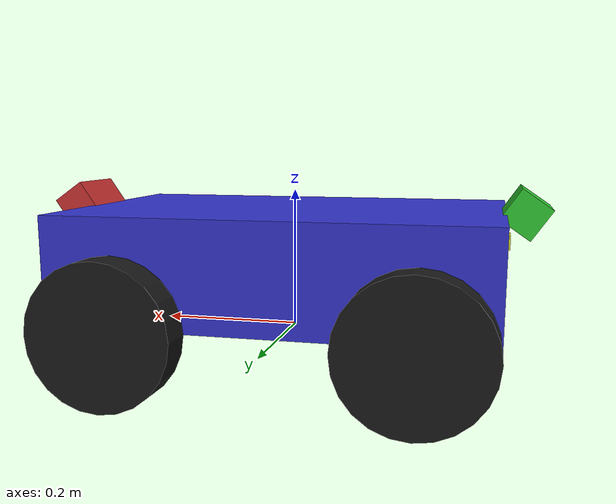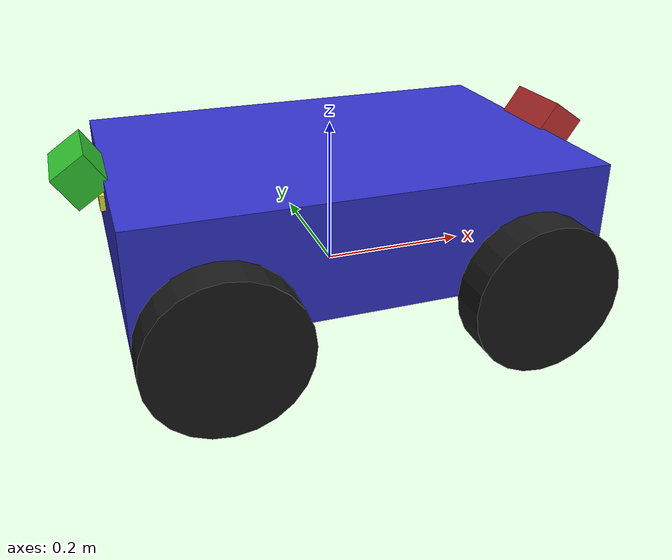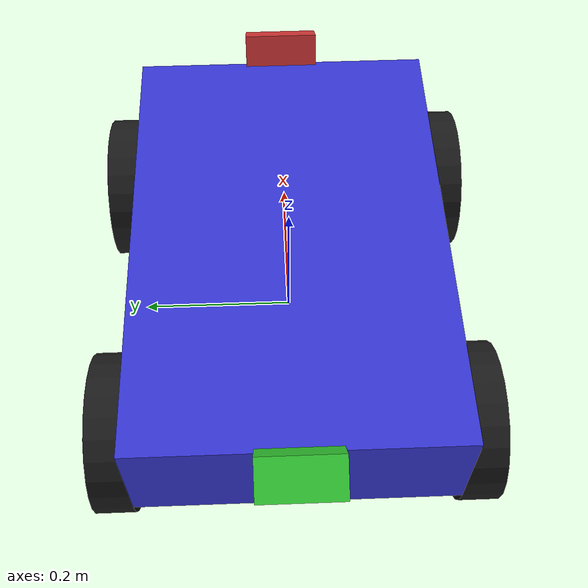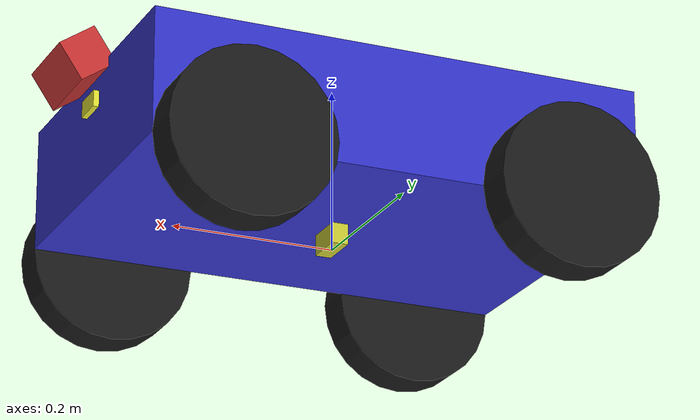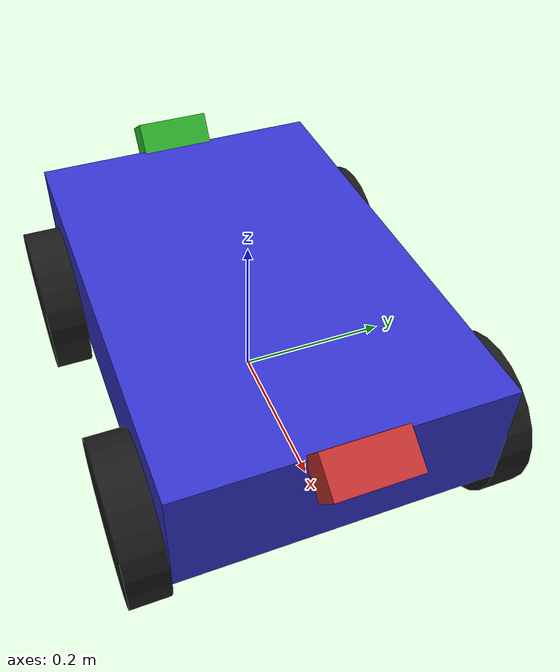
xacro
<?xml version="1.0"?>
<robot xmlns:xacro="http://www.ros.org/wiki/xacro" name="line_follower_robot">

  <!-- Import the original robot xacro -->
  <xacro:include filename="$(find blue_line_follower)/urdf/line_follower_robot.urdf.xacro" />

  <!-- Override the gazebo_ros2_control plugin with namespace -->
  <gazebo>
    <plugin filename="libgazebo_ros2_control.so" name="gazebo_ros2_control">
      <robot_param>blue_robot_description</robot_param>
      <robot_param_node>blue_robot_state_publisher</robot_param_node>
      <parameters>$(find blue_line_follower)/config/controller_config.yaml</parameters>
      <ros>
        <namespace>/line_follower</namespace>
      </ros>
    </plugin>
  </gazebo>

</robot>

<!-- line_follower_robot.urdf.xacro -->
<robot xmlns:xacro="http://www.ros.org/wiki/xacro" name="line_follower_robot">

  <!-- Define constants -->
  <xacro:property name="base_width" value="0.4"/>
  <xacro:property name="base_length" value="0.6"/>
  <xacro:property name="base_height" value="0.15"/>
  <xacro:property name="wheel_radius" value="0.1"/>
  <xacro:property name="wheel_width" value="0.05"/>
  <xacro:property name="wheel_separation" value="0.45"/>
  <xacro:property name="wheel_base" value="0.4"/>

  <!-- Base Link -->
  <link name="base_link">
    <visual>
      <geometry>
        <box size="${base_length} ${base_width} ${base_height}"/>
      </geometry>
      <material name="blue">
        <color rgba="0.2 0.2 0.8 1"/>
      </material>
    </visual>
    <collision>
      <geometry>
        <box size="${base_length} ${base_width} ${base_height}"/>
      </geometry>
    </collision>
    <inertial>
      <mass value="5.0"/>
      <inertia ixx="0.1" ixy="0.0" ixz="0.0" iyy="0.1" iyz="0.0" izz="0.1"/>
    </inertial>
  </link>

  <!-- Footprint Link -->
  <link name="base_footprint"/>

  <joint name="base_footprint_joint" type="fixed">
    <parent link="base_footprint"/>
    <child link="base_link"/>
    <origin xyz="0 0 ${wheel_radius}" rpy="0 0 0"/>
  </joint>

  <!-- Wheel Macro -->
  <xacro:macro name="wheel" params="prefix x_pos y_pos">
    <link name="${prefix}_wheel">
      <visual>
        <geometry>
          <cylinder radius="${wheel_radius}" length="${wheel_width}"/>
        </geometry>
        <material name="black">
          <color rgba="0.1 0.1 0.1 1"/>
        </material>
        <origin xyz="0 0 0" rpy="${pi/2} 0 0"/>
      </visual>
      <collision>
        <geometry>
          <cylinder radius="${wheel_radius}" length="${wheel_width}"/>
        </geometry>
        <origin xyz="0 0 0" rpy="${pi/2} 0 0"/>
      </collision>
      <inertial>
        <mass value="0.5"/>
        <inertia ixx="0.01" ixy="0.0" ixz="0.0" iyy="0.01" iyz="0.0" izz="0.01"/>
      </inertial>
    </link>

    <joint name="${prefix}_wheel_joint" type="continuous">
      <parent link="base_link"/>
      <child link="${prefix}_wheel"/>
      <origin xyz="${x_pos} ${y_pos} ${-base_height/2}" rpy="0 0 0"/>
      <axis xyz="0 1 0"/>
    </joint>

    <!-- Gazebo reference for wheel -->
    <gazebo reference="${prefix}_wheel">
      <material>Gazebo/Black</material>
      <mu1>1.0</mu1>
      <mu2>1.0</mu2>
      <kp>1000000.0</kp>
      <kd>100.0</kd>
    </gazebo>
  </xacro:macro>

  <!-- Create 4 wheels -->
  <xacro:wheel prefix="front_left" x_pos="${wheel_base/2}" y_pos="${wheel_separation/2}"/>
  <xacro:wheel prefix="front_right" x_pos="${wheel_base/2}" y_pos="${-wheel_separation/2}"/>
  <xacro:wheel prefix="rear_left" x_pos="${-wheel_base/2}" y_pos="${wheel_separation/2}"/>
  <xacro:wheel prefix="rear_right" x_pos="${-wheel_base/2}" y_pos="${-wheel_separation/2}"/>

  <!-- Camera Link -->
  <link name="camera_link">
    <visual>
      <geometry>
        <box size="0.05 0.1 0.05"/>
      </geometry>
      <material name="red">
        <color rgba="0.8 0.2 0.2 1"/>
      </material>
    </visual>
    <collision>
      <geometry>
        <box size="0.05 0.1 0.05"/>
      </geometry>
    </collision>
    <inertial>
      <mass value="0.1"/>
      <inertia ixx="0.001" ixy="0.0" ixz="0.0" iyy="0.001" iyz="0.0" izz="0.001"/>
    </inertial>
  </link>

  <joint name="camera_joint" type="fixed">
    <parent link="base_link"/>
    <child link="camera_link"/>
    <origin xyz="${base_length/2 + 0.025} 0 ${base_height/2 + 0}" rpy="0 0.6 0"/>
  </joint>

  <!-- Camera Sensor -->
  <gazebo reference="camera_link">
    <sensor type="camera" name="camera">
      <update_rate>30.0</update_rate>
      <camera name="head">
        <horizontal_fov>1.3962634</horizontal_fov>
        <image>
          <width>640</width>
          <height>480</height>
          <format>R8G8B8</format>
        </image>
        <clip>
          <near>0.02</near>
          <far>300</far>
        </clip>
        <noise>
          <type>gaussian</type>
          <mean>0.0</mean>
          <stddev>0.007</stddev>
        </noise>
      </camera>
      <plugin name="camera_controller" filename="libgazebo_ros_camera.so">
        <frame_name>camera_link</frame_name>
        <ros>
          <namespace>/</namespace>
          <remapping>~/image_raw:=camera/image_raw</remapping>
          <remapping>~/camera_info:=camera/camera_info</remapping>
        </ros>
      </plugin>
    </sensor>
  </gazebo>

  <!-- Rear Camera Link -->
  <link name="rear_camera_link">
    <visual>
      <geometry>
        <box size="0.05 0.1 0.05"/>
      </geometry>
      <material name="green">
        <color rgba="0.2 0.8 0.2 1"/>
      </material>
    </visual>
    <collision>
      <geometry>
        <box size="0.05 0.1 0.05"/>
      </geometry>
    </collision>
    <inertial>
      <mass value="0.1"/>
      <inertia ixx="0.001" ixy="0.0" ixz="0.0" iyy="0.001" iyz="0.0" izz="0.001"/>
    </inertial>
  </link>

  <joint name="rear_camera_joint" type="fixed">
    <parent link="base_link"/>
    <child link="rear_camera_link"/>
    <origin xyz="${-base_length/2 - 0.025} 0 ${base_height/2 + 0}" rpy="0 0.6 3.14159"/>
  </joint>

  <!-- Rear Camera Sensor -->
  <gazebo reference="rear_camera_link">
    <sensor type="camera" name="rear_camera">
      <update_rate>30.0</update_rate>
      <camera name="rear">
        <horizontal_fov>1.3962634</horizontal_fov>
        <image>
          <width>640</width>
          <height>480</height>
          <format>R8G8B8</format>
        </image>
        <clip>
          <near>0.02</near>
          <far>300</far>
        </clip>
        <noise>
          <type>gaussian</type>
          <mean>0.0</mean>
          <stddev>0.007</stddev>
        </noise>
      </camera>
      <plugin name="rear_camera_controller" filename="libgazebo_ros_camera.so">
        <frame_name>rear_camera_link</frame_name>
        <ros>
          <namespace>/</namespace>
          <remapping>~/image_raw:=rear_camera/image_raw</remapping>
          <remapping>~/camera_info:=rear_camera/camera_info</remapping>
        </ros>
      </plugin>
    </sensor>
  </gazebo>

  <!-- Bottom Camera Link (fixed under chassis) -->
  <link name="bottom_camera_link">
    <visual>
      <geometry>
        <box size="0.05 0.05 0.02"/>
      </geometry>
      <material name="yellow">
        <color rgba="0.8 0.8 0.2 1"/>
      </material>
    </visual>
    <collision>
      <geometry>
        <box size="0.05 0.05 0.02"/>
      </geometry>
    </collision>
    <inertial>
      <mass value="0.05"/>
      <inertia ixx="0.0001" ixy="0.0" ixz="0.0" iyy="0.0001" iyz="0.0" izz="0.0001"/>
    </inertial>
  </link>

  <joint name="bottom_camera_joint" type="fixed">
    <parent link="base_link"/>
    <child link="bottom_camera_link"/>
    <origin xyz="0 0 ${-base_height/2 }" rpy="0 1.5708 0"/>
  </joint>

  <!-- Bottom Camera Sensor -->
  <gazebo reference="bottom_camera_link">
    <sensor type="camera" name="bottom_camera">
      <update_rate>30.0</update_rate>
      <camera name="bottom">
        <horizontal_fov>1.3962634</horizontal_fov>
        <image>
          <width>640</width>
          <height>640</height>
          <format>R8G8B8</format>
        </image>
        <clip>
          <near>0.02</near>
          <far>2.0</far>
        </clip>
        <noise>
          <type>gaussian</type>
          <mean>0.0</mean>
          <stddev>0.007</stddev>
        </noise>
      </camera>
      <plugin name="bottom_camera_controller" filename="libgazebo_ros_camera.so">
        <frame_name>bottom_camera_link</frame_name>
        <ros>
          <namespace>/</namespace>
          <remapping>~/image_raw:=bottom_camera/image_raw</remapping>
          <remapping>~/camera_info:=bottom_camera/camera_info</remapping>
        </ros>
      </plugin>
    </sensor>
  </gazebo>

  <!-- ros2_control -->
  <ros2_control name="gazebo_ros2_control" type="system">
    <hardware>
      <plugin>gazebo_ros2_control/GazeboSystem</plugin>
    </hardware>

    <!-- Front Left Wheel Joint -->
    <joint name="front_left_wheel_joint">
      <command_interface name="velocity">
        <param name="min">-10</param>
        <param name="max">10</param>
      </command_interface>
      <state_interface name="position"/>
      <state_interface name="velocity"/>
    </joint>

    <!-- Front Right Wheel Joint -->
    <joint name="front_right_wheel_joint">
      <command_interface name="velocity">
        <param name="min">-10</param>
        <param name="max">10</param>
      </command_interface>
      <state_interface name="position"/>
      <state_interface name="velocity"/>
    </joint>

    <!-- Rear Left Wheel Joint -->
    <joint name="rear_left_wheel_joint">
      <command_interface name="velocity">
        <param name="min">-10</param>
        <param name="max">10</param>
      </command_interface>
      <state_interface name="position"/>
      <state_interface name="velocity"/>
    </joint>

    <!-- Rear Right Wheel Joint -->
    <joint name="rear_right_wheel_joint">
      <command_interface name="velocity">
        <param name="min">-10</param>
        <param name="max">10</param>
      </command_interface>
      <state_interface name="position"/>
      <state_interface name="velocity"/>
    </joint>
  </ros2_control>

  <!-- Gazebo ros2_control plugin -->
  <gazebo>
    <plugin filename="libgazebo_ros2_control.so" name="line_follower_ros2_control">
      <robot_param>robot_description</robot_param>
      <robot_param_node>/line_follower/robot_state_publisher</robot_param_node>
      <parameters>$(find blue_line_follower)/config/controller_config_namespaced.yaml</parameters>
      <ros>
        <namespace>/line_follower</namespace>
        <argument>--ros-args</argument>
        <argument>-r</argument>
        <argument>__node:=line_follower_controller_manager</argument>
      </ros>
    </plugin>
  </gazebo>

  <!-- Front Ultrasonic Sensor Link -->
  <link name="front_ultrasonic_link">
    <visual>
      <geometry>
        <box size="0.02 0.04 0.02"/>
      </geometry>
      <material name="yellow">
        <color rgba="0.9 0.9 0.2 1"/>
      </material>
    </visual>
    <collision>
      <geometry>
        <box size="0.02 0.04 0.02"/>
      </geometry>
    </collision>
    <inertial>
      <mass value="0.01"/>
      <inertia ixx="0.0001" ixy="0.0" ixz="0.0" iyy="0.0001" iyz="0.0" izz="0.0001"/>
    </inertial>
  </link>

  <joint name="front_ultrasonic_joint" type="fixed">
    <parent link="camera_link"/>
    <child link="front_ultrasonic_link"/>
    <origin xyz="0.0 0 -0.05" rpy="0 -0.6 0"/>
  </joint>

  <!-- Front Ultrasonic Sensor -->
  <gazebo reference="front_ultrasonic_link">
    <sensor type="ray" name="front_ultrasonic_sensor">
      <pose>0 0 0 0 0 0</pose>
      <visualize>true</visualize>
      <update_rate>10</update_rate>
      <ray>
        <scan>
          <horizontal>
            <samples>5</samples>
            <resolution>1</resolution>
            <min_angle>-0.12</min_angle>
            <max_angle>0.12</max_angle>
          </horizontal>
          <vertical>
            <samples>5</samples>
            <resolution>1</resolution>
            <min_angle>-0.12</min_angle>
            <max_angle>0.12</max_angle>
          </vertical>
        </scan>
        <range>
          <min>0.02</min>
          <max>2.0</max>
          <resolution>0.01</resolution>
        </range>
        <noise>
          <type>gaussian</type>
          <mean>0.0</mean>
          <stddev>0.01</stddev>
        </noise>
      </ray>
      <plugin name="front_ultrasonic_controller" filename="libgazebo_ros_ray_sensor.so">
        <ros>
          <namespace>/</namespace>
          <remapping>~/out:=front_ultrasonic/range</remapping>
        </ros>
        <output_type>sensor_msgs/Range</output_type>
        <frame_name>front_ultrasonic_link</frame_name>
        <radiation_type>ultrasound</radiation_type>
      </plugin>
    </sensor>
  </gazebo>

  <!-- Rear Ultrasonic Sensor Link -->
  <link name="rear_ultrasonic_link">
    <visual>
      <geometry>
        <box size="0.02 0.04 0.02"/>
      </geometry>
      <material name="yellow">
        <color rgba="0.9 0.9 0.2 1"/>
      </material>
    </visual>
    <collision>
      <geometry>
        <box size="0.02 0.04 0.02"/>
      </geometry>
    </collision>
    <inertial>
      <mass value="0.01"/>
      <inertia ixx="0.0001" ixy="0.0" ixz="0.0" iyy="0.0001" iyz="0.0" izz="0.0001"/>
    </inertial>
  </link>

  <joint name="rear_ultrasonic_joint" type="fixed">
    <parent link="rear_camera_link"/>
    <child link="rear_ultrasonic_link"/>
    <origin xyz="0.0 0 -0.05" rpy="0 -0.6 0"/>
  </joint>

  <!-- Rear Ultrasonic Sensor -->
  <gazebo reference="rear_ultrasonic_link">
    <sensor type="ray" name="rear_ultrasonic_sensor">
      <pose>0 0 0 0 0 0</pose>
      <visualize>true</visualize>
      <update_rate>10</update_rate>
      <ray>
        <scan>
          <horizontal>
            <samples>5</samples>
            <resolution>1</resolution>
            <min_angle>-0.12</min_angle>
            <max_angle>0.12</max_angle>
          </horizontal>
          <vertical>
            <samples>5</samples>
            <resolution>1</resolution>
            <min_angle>-0.12</min_angle>
            <max_angle>0.12</max_angle>
          </vertical>
        </scan>
        <range>
          <min>0.02</min>
          <max>2.0</max>
          <resolution>0.01</resolution>
        </range>
        <noise>
          <type>gaussian</type>
          <mean>0.0</mean>
          <stddev>0.01</stddev>
        </noise>
      </ray>
      <plugin name="rear_ultrasonic_controller" filename="libgazebo_ros_ray_sensor.so">
        <ros>
          <namespace>/</namespace>
          <remapping>~/out:=rear_ultrasonic/range</remapping>
        </ros>
        <output_type>sensor_msgs/Range</output_type>
        <frame_name>rear_ultrasonic_link</frame_name>
        <radiation_type>ultrasound</radiation_type>
      </plugin>
    </sensor>
  </gazebo>

  <!-- Gazebo base_link material -->
  <gazebo reference="base_link">
    <material>Gazebo/Blue</material>
  </gazebo>

</robot>
